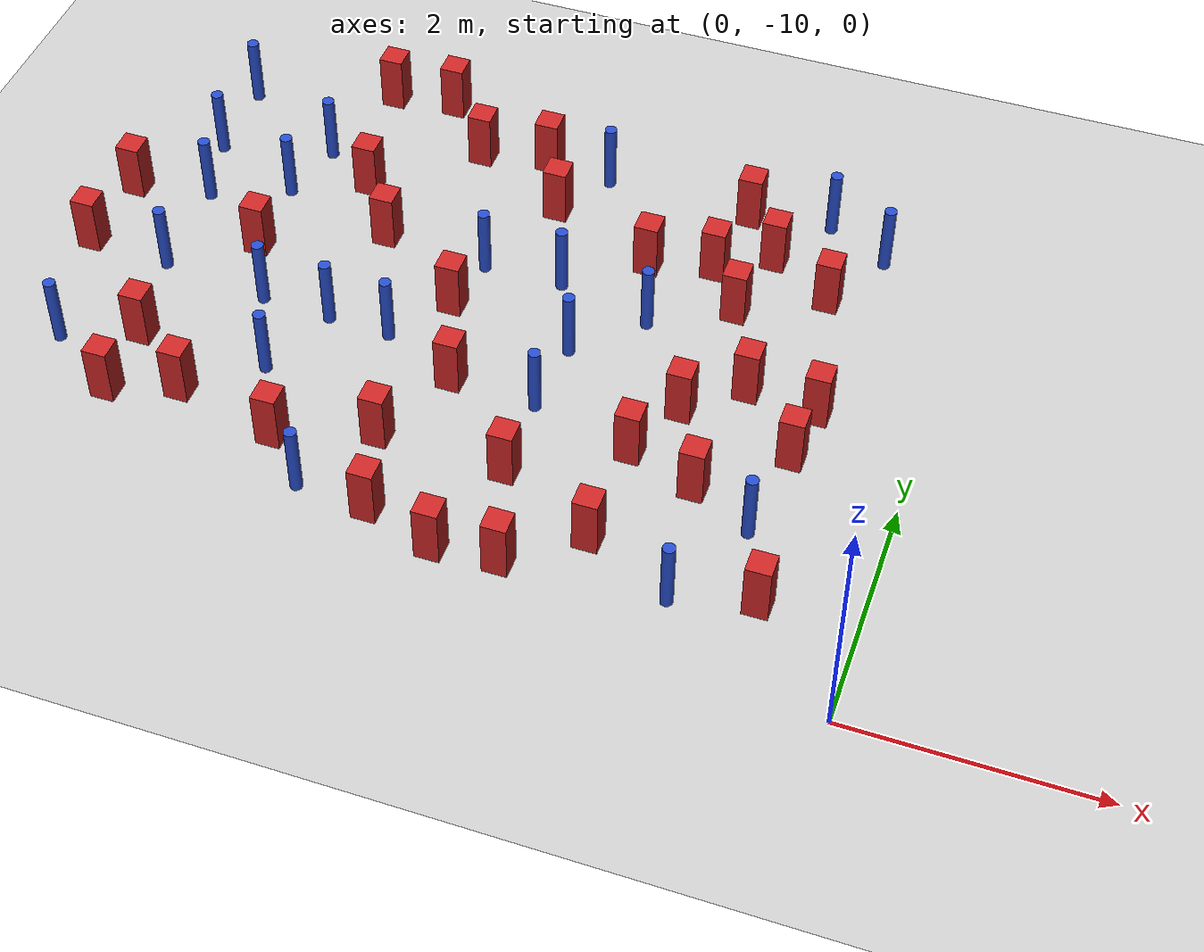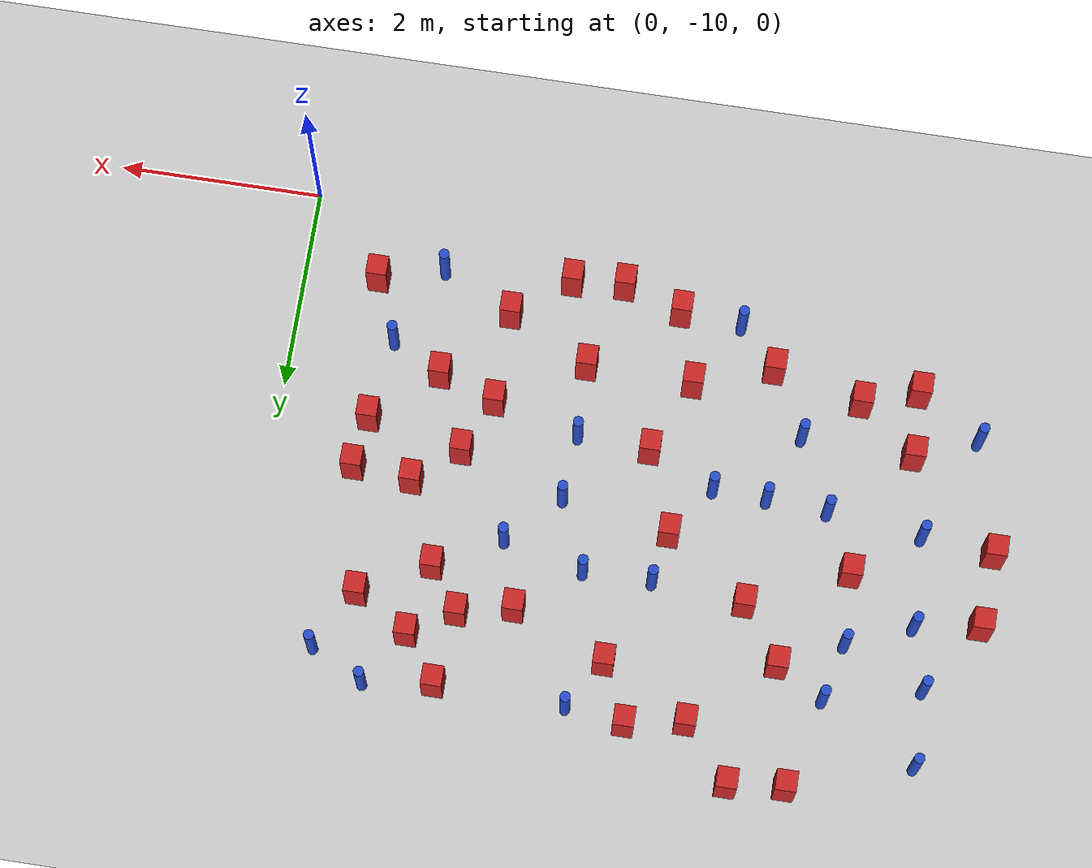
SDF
<sdf version="1.6">
 <world name="default">
  <model name="ground_plane">
   <static>1</static>
   <link name="link">
    <collision name="collision">
     <geometry><plane><normal>0 0 1</normal><size>100 100</size></plane></geometry>
     <surface><friction><ode><mu>100</mu><mu2>50</mu2></ode></friction></surface>
    </collision>
    <visual name="visual">
     <cast_shadows>0</cast_shadows>
     <geometry><plane><normal>0 0 1</normal><size>100 100</size></plane></geometry>
     <material>
      <ambient>1.0 1.0 1.0 1.0</ambient>
      <diffuse>0.8 0.8 0.8 1.0</diffuse>
      <specular>0.01 0.01 0.01 1.000000</specular>
     </material>
    </visual>
   </link>
  </model>
  <model name="pole_obstacle1">
   <static>true</static>
   <pose>-5.5666735039 -5.6523936144 -9.47619616065e-06 5.49618799737e-07 2.36310414037e-07 -1.55090534814e-07</pose>
   <link name="link">
    <pose>0 0 0.3 0 -0 0</pose>
    <inertial>
     <mass>1</mass>
     <inertia><ixx>0.145833</ixx><ixy>0</ixy><ixz>0</ixz><iyy>0.145833</iyy><iyz>0</iyz><izz>0.125</izz></inertia>
    </inertial>
    <collision name="collision">
     <geometry><cylinder><radius>0.05</radius><length>.6</length></cylinder></geometry>
    </collision>
    <visual name="visual">
     <geometry><cylinder><radius>0.05</radius><length>.6</length></cylinder></geometry>
     <material>
      <script><name>Gazebo/Blue</name><uri>file://media/materials/scripts/gazebo.material</uri></script>
     </material>
    </visual>
   </link>
  </model>
  <model name="pole_obstacle10">
   <static>true</static>
   <pose>-3.19090244332 -5.21670269454 -9.4761961606e-06 5.49618799729e-07 2.36310414006e-07 -1.55090534822e-07</pose>
   <link name="link">
    <pose>0 0 0.3 0 -0 0</pose>
    <inertial>
     <mass>1</mass>
     <inertia><ixx>0.145833</ixx><ixy>0</ixy><ixz>0</ixz><iyy>0.145833</iyy><iyz>0</iyz><izz>0.125</izz></inertia>
    </inertial>
    <collision name="collision">
     <geometry><cylinder><radius>0.05</radius><length>.6</length></cylinder></geometry>
    </collision>
    <visual name="visual">
     <geometry><cylinder><radius>0.05</radius><length>.6</length></cylinder></geometry>
     <material>
      <script><name>Gazebo/Blue</name><uri>file://media/materials/scripts/gazebo.material</uri></script>
     </material>
    </visual>
   </link>
  </model>
  <model name="square_post_obstacle8">
   <static>true</static>
   <pose>-1.40005594212 -7.19498384418 -6.11067671241e-07 -5.50515727128e-06 -8.79689657224e-07 2.37013304536e-05</pose>
   <link name="link">
    <pose>0 0 0.25 0 -0 0</pose>
    <inertial>
     <mass>100</mass>
     <inertia>
      <ixx>0.166667</ixx>
      <ixy>0</ixy>
      <ixz>0</ixz>
      <iyy>0.166667</iyy>
      <iyz>0</iyz>
      <izz>0.166667</izz>
     </inertia>
    </inertial>
    <collision name="collision"><geometry><box><size>.2 .2 .5</size></box></geometry></collision>
    <visual name="visual">
     <geometry><box><size>.2 .2 .5</size></box></geometry>
     <material>
      <script><name>Gazebo/Red</name><uri>file://media/materials/scripts/gazebo.material</uri></script>
     </material>
    </visual>
   </link>
  </model>
  <model name="pole_obstacle18">
   <static>true</static>
   <pose>-4.32137698985 -9.2348338794 -9.47619616065e-06 5.49618799737e-07 2.36310414065e-07 -1.55090534796e-07</pose>
   <link name="link">
    <pose>0 0 0.3 0 -0 0</pose>
    <inertial>
     <mass>1</mass>
     <inertia><ixx>0.145833</ixx><ixy>0</ixy><ixz>0</ixz><iyy>0.145833</iyy><iyz>0</iyz><izz>0.125</izz></inertia>
    </inertial>
    <collision name="collision">
     <geometry><cylinder><radius>0.05</radius><length>.6</length></cylinder></geometry>
    </collision>
    <visual name="visual">
     <geometry><cylinder><radius>0.05</radius><length>.6</length></cylinder></geometry>
     <material>
      <script><name>Gazebo/Blue</name><uri>file://media/materials/scripts/gazebo.material</uri></script>
     </material>
    </visual>
   </link>
  </model>
  <model name="pole_obstacle22">
   <static>true</static>
   <pose>-2.90995451725 -7.87920701199 -9.47619616065e-06 5.49618799738e-07 2.3631041406e-07 -1.55090534801e-07</pose>
   <link name="link">
    <pose>0 0 0.3 0 -0 0</pose>
    <inertial>
     <mass>1</mass>
     <inertia><ixx>0.145833</ixx><ixy>0</ixy><ixz>0</ixz><iyy>0.145833</iyy><iyz>0</iyz><izz>0.125</izz></inertia>
    </inertial>
    <collision name="collision">
     <geometry><cylinder><radius>0.05</radius><length>.6</length></cylinder></geometry>
    </collision>
    <visual name="visual">
     <geometry><cylinder><radius>0.05</radius><length>.6</length></cylinder></geometry>
     <material>
      <script><name>Gazebo/Blue</name><uri>file://media/materials/scripts/gazebo.material</uri></script>
     </material>
    </visual>
   </link>
  </model>
  <model name="square_post_obstacle26">
   <static>true</static>
   <pose>-2.8903836845 -8.59846554937 -6.11067671241e-07 -5.50515727128e-06 -8.79689657224e-07 2.37013304536e-05</pose>
   <link name="link">
    <pose>0 0 0.25 0 -0 0</pose>
    <inertial>
     <mass>100</mass>
     <inertia>
      <ixx>0.166667</ixx>
      <ixy>0</ixy>
      <ixz>0</ixz>
      <iyy>0.166667</iyy>
      <iyz>0</iyz>
      <izz>0.166667</izz>
     </inertia>
    </inertial>
    <collision name="collision"><geometry><box><size>.2 .2 .5</size></box></geometry></collision>
    <visual name="visual">
     <geometry><box><size>.2 .2 .5</size></box></geometry>
     <material>
      <script><name>Gazebo/Red</name><uri>file://media/materials/scripts/gazebo.material</uri></script>
     </material>
    </visual>
   </link>
  </model>
  <model name="pole_obstacle37">
   <static>true</static>
   <pose>-6.30495607313 -7.37400436442 -9.47619616065e-06 5.49618799737e-07 2.36310414037e-07 -1.55090534814e-07</pose>
   <link name="link">
    <pose>0 0 0.3 0 -0 0</pose>
    <inertial>
     <mass>1</mass>
     <inertia><ixx>0.145833</ixx><ixy>0</ixy><ixz>0</ixz><iyy>0.145833</iyy><iyz>0</iyz><izz>0.125</izz></inertia>
    </inertial>
    <collision name="collision">
     <geometry><cylinder><radius>0.05</radius><length>.6</length></cylinder></geometry>
    </collision>
    <visual name="visual">
     <geometry><cylinder><radius>0.05</radius><length>.6</length></cylinder></geometry>
     <material>
      <script><name>Gazebo/Blue</name><uri>file://media/materials/scripts/gazebo.material</uri></script>
     </material>
    </visual>
   </link>
  </model>
  <model name="pole_obstacle42">
   <static>true</static>
   <pose>-3.15892760082 -6.54009067874 -9.4761961606e-06 5.49618799729e-07 2.36310414006e-07 -1.55090534822e-07</pose>
   <link name="link">
    <pose>0 0 0.3 0 -0 0</pose>
    <inertial>
     <mass>1</mass>
     <inertia><ixx>0.145833</ixx><ixy>0</ixy><ixz>0</ixz><iyy>0.145833</iyy><iyz>0</iyz><izz>0.125</izz></inertia>
    </inertial>
    <collision name="collision">
     <geometry><cylinder><radius>0.05</radius><length>.6</length></cylinder></geometry>
    </collision>
    <visual name="visual">
     <geometry><cylinder><radius>0.05</radius><length>.6</length></cylinder></geometry>
     <material>
      <script><name>Gazebo/Blue</name><uri>file://media/materials/scripts/gazebo.material</uri></script>
     </material>
    </visual>
   </link>
  </model>
  <model name="square_post_obstacle31">
   <static>true</static>
   <pose>-1.6029362537 -5.70060464757 -6.11067671241e-07 -5.50515727128e-06 -8.79689657224e-07 2.37013304536e-05</pose>
   <link name="link">
    <pose>0 0 0.25 0 -0 0</pose>
    <inertial>
     <mass>100</mass>
     <inertia>
      <ixx>0.166667</ixx>
      <ixy>0</ixy>
      <ixz>0</ixz>
      <iyy>0.166667</iyy>
      <iyz>0</iyz>
      <izz>0.166667</izz>
     </inertia>
    </inertial>
    <collision name="collision"><geometry><box><size>.2 .2 .5</size></box></geometry></collision>
    <visual name="visual">
     <geometry><box><size>.2 .2 .5</size></box></geometry>
     <material>
      <script><name>Gazebo/Red</name><uri>file://media/materials/scripts/gazebo.material</uri></script>
     </material>
    </visual>
   </link>
  </model>
  <model name="square_post_obstacle36">
   <static>true</static>
   <pose>-3.72131818448 -9.28582139799 -6.11067671241e-07 -5.50515727128e-06 -8.79689657224e-07 2.37013304536e-05</pose>
   <link name="link">
    <pose>0 0 0.25 0 -0 0</pose>
    <inertial>
     <mass>100</mass>
     <inertia>
      <ixx>0.166667</ixx>
      <ixy>0</ixy>
      <ixz>0</ixz>
      <iyy>0.166667</iyy>
      <iyz>0</iyz>
      <izz>0.166667</izz>
     </inertia>
    </inertial>
    <collision name="collision"><geometry><box><size>.2 .2 .5</size></box></geometry></collision>
    <visual name="visual">
     <geometry><box><size>.2 .2 .5</size></box></geometry>
     <material>
      <script><name>Gazebo/Red</name><uri>file://media/materials/scripts/gazebo.material</uri></script>
     </material>
    </visual>
   </link>
  </model>
  <model name="pole_obstacle51">
   <static>true</static>
   <pose>-0.995758922429 -8.56179552225 -9.47619616065e-06 5.49618799737e-07 2.36310414038e-07 -1.55090534814e-07</pose>
   <link name="link">
    <pose>0 0 0.3 0 -0 0</pose>
    <inertial>
     <mass>1</mass>
     <inertia><ixx>0.145833</ixx><ixy>0</ixy><ixz>0</ixz><iyy>0.145833</iyy><iyz>0</iyz><izz>0.125</izz></inertia>
    </inertial>
    <collision name="collision">
     <geometry><cylinder><radius>0.05</radius><length>.6</length></cylinder></geometry>
    </collision>
    <visual name="visual">
     <geometry><cylinder><radius>0.05</radius><length>.6</length></cylinder></geometry>
     <material>
      <script><name>Gazebo/Blue</name><uri>file://media/materials/scripts/gazebo.material</uri></script>
     </material>
    </visual>
   </link>
  </model>
  <model name="square_post_obstacle54">
   <static>true</static>
   <pose>-1.06863017638 -6.02365614537 -6.11067671241e-07 -5.50515727128e-06 -8.79689657224e-07 2.37013304536e-05</pose>
   <link name="link">
    <pose>0 0 0.25 0 -0 0</pose>
    <inertial>
     <mass>100</mass>
     <inertia>
      <ixx>0.166667</ixx>
      <ixy>0</ixy>
      <ixz>0</ixz>
      <iyy>0.166667</iyy>
      <iyz>0</iyz>
      <izz>0.166667</izz>
     </inertia>
    </inertial>
    <collision name="collision"><geometry><box><size>.2 .2 .5</size></box></geometry></collision>
    <visual name="visual">
     <geometry><box><size>.2 .2 .5</size></box></geometry>
     <material>
      <script><name>Gazebo/Red</name><uri>file://media/materials/scripts/gazebo.material</uri></script>
     </material>
    </visual>
   </link>
  </model>
  <model name="pole_obstacle69">
   <static>true</static>
   <pose>-5.38596372728 -7.48326434706 -9.47619616065e-06 5.49618799737e-07 2.36310414037e-07 -1.55090534814e-07</pose>
   <link name="link">
    <pose>0 0 0.3 0 -0 0</pose>
    <inertial>
     <mass>1</mass>
     <inertia><ixx>0.145833</ixx><ixy>0</ixy><ixz>0</ixz><iyy>0.145833</iyy><iyz>0</iyz><izz>0.125</izz></inertia>
    </inertial>
    <collision name="collision">
     <geometry><cylinder><radius>0.05</radius><length>.6</length></cylinder></geometry>
    </collision>
    <visual name="visual">
     <geometry><cylinder><radius>0.05</radius><length>.6</length></cylinder></geometry>
     <material>
      <script><name>Gazebo/Blue</name><uri>file://media/materials/scripts/gazebo.material</uri></script>
     </material>
    </visual>
   </link>
  </model>
  <model name="pole_obstacle70">
   <static>true</static>
   <pose>-2.36953930093 -6.73771808582 -9.47619616065e-06 5.49618799738e-07 2.3631041406e-07 -1.55090534801e-07</pose>
   <link name="link">
    <pose>0 0 0.3 0 -0 0</pose>
    <inertial>
     <mass>1</mass>
     <inertia><ixx>0.145833</ixx><ixy>0</ixy><ixz>0</ixz><iyy>0.145833</iyy><iyz>0</iyz><izz>0.125</izz></inertia>
    </inertial>
    <collision name="collision">
     <geometry><cylinder><radius>0.05</radius><length>.6</length></cylinder></geometry>
    </collision>
    <visual name="visual">
     <geometry><cylinder><radius>0.05</radius><length>.6</length></cylinder></geometry>
     <material>
      <script><name>Gazebo/Blue</name><uri>file://media/materials/scripts/gazebo.material</uri></script>
     </material>
    </visual>
   </link>
  </model>
  <model name="square_post_obstacle66">
   <static>true</static>
   <pose>-4.71747509823 -6.47133853467 -6.11067671241e-07 -5.50515727128e-06 -8.79689657224e-07 2.37013304536e-05</pose>
   <link name="link">
    <pose>0 0 0.25 0 -0 0</pose>
    <inertial>
     <mass>100</mass>
     <inertia>
      <ixx>0.166667</ixx>
      <ixy>0</ixy>
      <ixz>0</ixz>
      <iyy>0.166667</iyy>
      <iyz>0</iyz>
      <izz>0.166667</izz>
     </inertia>
    </inertial>
    <collision name="collision"><geometry><box><size>.2 .2 .5</size></box></geometry></collision>
    <visual name="visual">
     <geometry><box><size>.2 .2 .5</size></box></geometry>
     <material>
      <script><name>Gazebo/Red</name><uri>file://media/materials/scripts/gazebo.material</uri></script>
     </material>
    </visual>
   </link>
  </model>
  <model name="square_post_obstacle67">
   <static>true</static>
   <pose>-3.7569472109 -5.14997328504 -6.11067671241e-07 -5.50515727128e-06 -8.79689657224e-07 2.37013304536e-05</pose>
   <link name="link">
    <pose>0 0 0.25 0 -0 0</pose>
    <inertial>
     <mass>100</mass>
     <inertia>
      <ixx>0.166667</ixx>
      <ixy>0</ixy>
      <ixz>0</ixz>
      <iyy>0.166667</iyy>
      <iyz>0</iyz>
      <izz>0.166667</izz>
     </inertia>
    </inertial>
    <collision name="collision"><geometry><box><size>.2 .2 .5</size></box></geometry></collision>
    <visual name="visual">
     <geometry><box><size>.2 .2 .5</size></box></geometry>
     <material>
      <script><name>Gazebo/Red</name><uri>file://media/materials/scripts/gazebo.material</uri></script>
     </material>
    </visual>
   </link>
  </model>
  <model name="pole_obstacle82">
   <static>true</static>
   <pose>-5.04694706806 -8.19081765676 -9.47619616065e-06 5.49618799737e-07 2.36310414065e-07 -1.55090534796e-07</pose>
   <link name="link">
    <pose>0 0 0.3 0 -0 0</pose>
    <inertial>
     <mass>1</mass>
     <inertia><ixx>0.145833</ixx><ixy>0</ixy><ixz>0</ixz><iyy>0.145833</iyy><iyz>0</iyz><izz>0.125</izz></inertia>
    </inertial>
    <collision name="collision">
     <geometry><cylinder><radius>0.05</radius><length>.6</length></cylinder></geometry>
    </collision>
    <visual name="visual">
     <geometry><cylinder><radius>0.05</radius><length>.6</length></cylinder></geometry>
     <material>
      <script><name>Gazebo/Blue</name><uri>file://media/materials/scripts/gazebo.material</uri></script>
     </material>
    </visual>
   </link>
  </model>
  <model name="square_post_obstacle71">
   <static>true</static>
   <pose>-6.9579489745 -6.59122465245 -6.11067671241e-07 -5.50515727128e-06 -8.79689657224e-07 2.37013304536e-05</pose>
   <link name="link">
    <pose>0 0 0.25 0 -0 0</pose>
    <inertial>
     <mass>100</mass>
     <inertia>
      <ixx>0.166667</ixx>
      <ixy>0</ixy>
      <ixz>0</ixz>
      <iyy>0.166667</iyy>
      <iyz>0</iyz>
      <izz>0.166667</izz>
     </inertia>
    </inertial>
    <collision name="collision"><geometry><box><size>.2 .2 .5</size></box></geometry></collision>
    <visual name="visual">
     <geometry><box><size>.2 .2 .5</size></box></geometry>
     <material>
      <script><name>Gazebo/Red</name><uri>file://media/materials/scripts/gazebo.material</uri></script>
     </material>
    </visual>
   </link>
  </model>
  <model name="pole_obstacle88">
   <static>true</static>
   <pose>-6.49029369952 -5.88709925157 -9.47619616065e-06 5.49618799737e-07 2.36310414037e-07 -1.55090534814e-07</pose>
   <link name="link">
    <pose>0 0 0.3 0 -0 0</pose>
    <inertial>
     <mass>1</mass>
     <inertia><ixx>0.145833</ixx><ixy>0</ixy><ixz>0</ixz><iyy>0.145833</iyy><iyz>0</iyz><izz>0.125</izz></inertia>
    </inertial>
    <collision name="collision">
     <geometry><cylinder><radius>0.05</radius><length>.6</length></cylinder></geometry>
    </collision>
    <visual name="visual">
     <geometry><cylinder><radius>0.05</radius><length>.6</length></cylinder></geometry>
     <material>
      <script><name>Gazebo/Blue</name><uri>file://media/materials/scripts/gazebo.material</uri></script>
     </material>
    </visual>
   </link>
  </model>
  <model name="square_post_obstacle86">
   <static>true</static>
   <pose>-0.888967904088 -7.75920780892 -6.11067671241e-07 -5.50515727128e-06 -8.79689657224e-07 2.37013304536e-05</pose>
   <link name="link">
    <pose>0 0 0.25 0 -0 0</pose>
    <inertial>
     <mass>100</mass>
     <inertia>
      <ixx>0.166667</ixx>
      <ixy>0</ixy>
      <ixz>0</ixz>
      <iyy>0.166667</iyy>
      <iyz>0</iyz>
      <izz>0.166667</izz>
     </inertia>
    </inertial>
    <collision name="collision"><geometry><box><size>.2 .2 .5</size></box></geometry></collision>
    <visual name="visual">
     <geometry><box><size>.2 .2 .5</size></box></geometry>
     <material>
      <script><name>Gazebo/Red</name><uri>file://media/materials/scripts/gazebo.material</uri></script>
     </material>
    </visual>
   </link>
  </model>
  <model name="square_post_obstacle87">
   <static>true</static>
   <pose>-1.93460620867 -5.25336640845 -6.11067671241e-07 -5.50515727128e-06 -8.79689657224e-07 2.37013304536e-05</pose>
   <link name="link">
    <pose>0 0 0.25 0 -0 0</pose>
    <inertial>
     <mass>100</mass>
     <inertia>
      <ixx>0.166667</ixx>
      <ixy>0</ixy>
      <ixz>0</ixz>
      <iyy>0.166667</iyy>
      <iyz>0</iyz>
      <izz>0.166667</izz>
     </inertia>
    </inertial>
    <collision name="collision"><geometry><box><size>.2 .2 .5</size></box></geometry></collision>
    <visual name="visual">
     <geometry><box><size>.2 .2 .5</size></box></geometry>
     <material>
      <script><name>Gazebo/Red</name><uri>file://media/materials/scripts/gazebo.material</uri></script>
     </material>
    </visual>
   </link>
  </model>
  <model name="square_post_obstacle97">
   <static>true</static>
   <pose>-2.5681400534 -6.08808087746 -6.11067671241e-07 -5.50515727128e-06 -8.79689657224e-07 2.37013304536e-05</pose>
   <link name="link">
    <pose>0 0 0.25 0 -0 0</pose>
    <inertial>
     <mass>100</mass>
     <inertia>
      <ixx>0.166667</ixx>
      <ixy>0</ixy>
      <ixz>0</ixz>
      <iyy>0.166667</iyy>
      <iyz>0</iyz>
      <izz>0.166667</izz>
     </inertia>
    </inertial>
    <collision name="collision"><geometry><box><size>.2 .2 .5</size></box></geometry></collision>
    <visual name="visual">
     <geometry><box><size>.2 .2 .5</size></box></geometry>
     <material>
      <script><name>Gazebo/Red</name><uri>file://media/materials/scripts/gazebo.material</uri></script>
     </material>
    </visual>
   </link>
  </model>
  <model name="pole_obstacle104">
   <static>true</static>
   <pose>-6.49712494102 -5.14992380395 -9.47619616065e-06 5.49618799737e-07 2.36310414037e-07 -1.55090534814e-07</pose>
   <link name="link">
    <pose>0 0 0.3 0 -0 0</pose>
    <inertial>
     <mass>1</mass>
     <inertia><ixx>0.145833</ixx><ixy>0</ixy><ixz>0</ixz><iyy>0.145833</iyy><iyz>0</iyz><izz>0.125</izz></inertia>
    </inertial>
    <collision name="collision">
     <geometry><cylinder><radius>0.05</radius><length>.6</length></cylinder></geometry>
    </collision>
    <visual name="visual">
     <geometry><cylinder><radius>0.05</radius><length>.6</length></cylinder></geometry>
     <material>
      <script><name>Gazebo/Blue</name><uri>file://media/materials/scripts/gazebo.material</uri></script>
     </material>
    </visual>
   </link>
  </model>
  <model name="square_post_obstacle101">
   <static>true</static>
   <pose>-0.737514001712 -9.1931380845 -6.11067671241e-07 -5.50515727128e-06 -8.79689657224e-07 2.37013304536e-05</pose>
   <link name="link">
    <pose>0 0 0.25 0 -0 0</pose>
    <inertial>
     <mass>100</mass>
     <inertia>
      <ixx>0.166667</ixx>
      <ixy>0</ixy>
      <ixz>0</ixz>
      <iyy>0.166667</iyy>
      <iyz>0</iyz>
      <izz>0.166667</izz>
     </inertia>
    </inertial>
    <collision name="collision"><geometry><box><size>.2 .2 .5</size></box></geometry></collision>
    <visual name="visual">
     <geometry><box><size>.2 .2 .5</size></box></geometry>
     <material>
      <script><name>Gazebo/Red</name><uri>file://media/materials/scripts/gazebo.material</uri></script>
     </material>
    </visual>
   </link>
  </model>
  <model name="square_post_obstacle104">
   <static>true</static>
   <pose>-3.48644381236 -5.70434741623 -6.11067671241e-07 -5.50515727128e-06 -8.79689657224e-07 2.37013304536e-05</pose>
   <link name="link">
    <pose>0 0 0.25 0 -0 0</pose>
    <inertial>
     <mass>100</mass>
     <inertia>
      <ixx>0.166667</ixx>
      <ixy>0</ixy>
      <ixz>0</ixz>
      <iyy>0.166667</iyy>
      <iyz>0</iyz>
      <izz>0.166667</izz>
     </inertia>
    </inertial>
    <collision name="collision"><geometry><box><size>.2 .2 .5</size></box></geometry></collision>
    <visual name="visual">
     <geometry><box><size>.2 .2 .5</size></box></geometry>
     <material>
      <script><name>Gazebo/Red</name><uri>file://media/materials/scripts/gazebo.material</uri></script>
     </material>
    </visual>
   </link>
  </model>
  <model name="square_post_obstacle105">
   <static>true</static>
   <pose>-4.32455526169 -5.25096981968 -6.11067671241e-07 -5.50515727128e-06 -8.79689657224e-07 2.37013304536e-05</pose>
   <link name="link">
    <pose>0 0 0.25 0 -0 0</pose>
    <inertial>
     <mass>100</mass>
     <inertia>
      <ixx>0.166667</ixx>
      <ixy>0</ixy>
      <ixz>0</ixz>
      <iyy>0.166667</iyy>
      <iyz>0</iyz>
      <izz>0.166667</izz>
     </inertia>
    </inertial>
    <collision name="collision"><geometry><box><size>.2 .2 .5</size></box></geometry></collision>
    <visual name="visual">
     <geometry><box><size>.2 .2 .5</size></box></geometry>
     <material>
      <script><name>Gazebo/Red</name><uri>file://media/materials/scripts/gazebo.material</uri></script>
     </material>
    </visual>
   </link>
  </model>
  <model name="square_post_obstacle106">
   <static>true</static>
   <pose>-5.67688063036 -6.92008028134 -6.11067671241e-07 -5.50515727128e-06 -8.79689657224e-07 2.37013304536e-05</pose>
   <link name="link">
    <pose>0 0 0.25 0 -0 0</pose>
    <inertial>
     <mass>100</mass>
     <inertia>
      <ixx>0.166667</ixx>
      <ixy>0</ixy>
      <ixz>0</ixz>
      <iyy>0.166667</iyy>
      <iyz>0</iyz>
      <izz>0.166667</izz>
     </inertia>
    </inertial>
    <collision name="collision"><geometry><box><size>.2 .2 .5</size></box></geometry></collision>
    <visual name="visual">
     <geometry><box><size>.2 .2 .5</size></box></geometry>
     <material>
      <script><name>Gazebo/Red</name><uri>file://media/materials/scripts/gazebo.material</uri></script>
     </material>
    </visual>
   </link>
  </model>
  <model name="square_post_obstacle111">
   <static>true</static>
   <pose>-2.06310555699 -8.10070946847 -6.11067671241e-07 -5.50515727128e-06 -8.79689657224e-07 2.37013304536e-05</pose>
   <link name="link">
    <pose>0 0 0.25 0 -0 0</pose>
    <inertial>
     <mass>100</mass>
     <inertia>
      <ixx>0.166667</ixx>
      <ixy>0</ixy>
      <ixz>0</ixz>
      <iyy>0.166667</iyy>
      <iyz>0</iyz>
      <izz>0.166667</izz>
     </inertia>
    </inertial>
    <collision name="collision"><geometry><box><size>.2 .2 .5</size></box></geometry></collision>
    <visual name="visual">
     <geometry><box><size>.2 .2 .5</size></box></geometry>
     <material>
      <script><name>Gazebo/Red</name><uri>file://media/materials/scripts/gazebo.material</uri></script>
     </material>
    </visual>
   </link>
  </model>
  <model name="square_post_obstacle112">
   <static>true</static>
   <pose>-5.10119640419 -5.92955668075 -6.11067671241e-07 -5.50515727128e-06 -8.79689657224e-07 2.37013304536e-05</pose>
   <link name="link">
    <pose>0 0 0.25 0 -0 0</pose>
    <inertial>
     <mass>100</mass>
     <inertia>
      <ixx>0.166667</ixx>
      <ixy>0</ixy>
      <ixz>0</ixz>
      <iyy>0.166667</iyy>
      <iyz>0</iyz>
      <izz>0.166667</izz>
     </inertia>
    </inertial>
    <collision name="collision"><geometry><box><size>.2 .2 .5</size></box></geometry></collision>
    <visual name="visual">
     <geometry><box><size>.2 .2 .5</size></box></geometry>
     <material>
      <script><name>Gazebo/Red</name><uri>file://media/materials/scripts/gazebo.material</uri></script>
     </material>
    </visual>
   </link>
  </model>
  <model name="square_post_obstacle116">
   <static>true</static>
   <pose>-3.61751567378 -7.84157798384 -6.11067671241e-07 -5.50515727128e-06 -8.79689657224e-07 2.37013304536e-05</pose>
   <link name="link">
    <pose>0 0 0.25 0 -0 0</pose>
    <inertial>
     <mass>100</mass>
     <inertia>
      <ixx>0.166667</ixx>
      <ixy>0</ixy>
      <ixz>0</ixz>
      <iyy>0.166667</iyy>
      <iyz>0</iyz>
      <izz>0.166667</izz>
     </inertia>
    </inertial>
    <collision name="collision"><geometry><box><size>.2 .2 .5</size></box></geometry></collision>
    <visual name="visual">
     <geometry><box><size>.2 .2 .5</size></box></geometry>
     <material>
      <script><name>Gazebo/Red</name><uri>file://media/materials/scripts/gazebo.material</uri></script>
     </material>
    </visual>
   </link>
  </model>
  <model name="pole_obstacle119">
   <static>true</static>
   <pose>-5.70571808592 -6.21399199672 -9.47619616065e-06 5.49618799737e-07 2.36310414037e-07 -1.55090534814e-07</pose>
   <link name="link">
    <pose>0 0 0.3 0 -0 0</pose>
    <inertial>
     <mass>1</mass>
     <inertia><ixx>0.145833</ixx><ixy>0</ixy><ixz>0</ixz><iyy>0.145833</iyy><iyz>0</iyz><izz>0.125</izz></inertia>
    </inertial>
    <collision name="collision">
     <geometry><cylinder><radius>0.05</radius><length>.6</length></cylinder></geometry>
    </collision>
    <visual name="visual">
     <geometry><cylinder><radius>0.05</radius><length>.6</length></cylinder></geometry>
     <material>
      <script><name>Gazebo/Blue</name><uri>file://media/materials/scripts/gazebo.material</uri></script>
     </material>
    </visual>
   </link>
  </model>
  <model name="pole_obstacle136">
   <static>true</static>
   <pose>-4.27039485388 -7.53993531027 -9.47619616065e-06 5.49618799737e-07 2.36310414037e-07 -1.55090534814e-07</pose>
   <link name="link">
    <pose>0 0 0.3 0 -0 0</pose>
    <inertial>
     <mass>1</mass>
     <inertia><ixx>0.145833</ixx><ixy>0</ixy><ixz>0</ixz><iyy>0.145833</iyy><iyz>0</iyz><izz>0.125</izz></inertia>
    </inertial>
    <collision name="collision">
     <geometry><cylinder><radius>0.05</radius><length>.6</length></cylinder></geometry>
    </collision>
    <visual name="visual">
     <geometry><cylinder><radius>0.05</radius><length>.6</length></cylinder></geometry>
     <material>
      <script><name>Gazebo/Blue</name><uri>file://media/materials/scripts/gazebo.material</uri></script>
     </material>
    </visual>
   </link>
  </model>
  <model name="pole_obstacle138">
   <static>true</static>
   <pose>-6.33184496836 -6.48124135569 -9.47619616065e-06 5.49618799737e-07 2.36310414037e-07 -1.55090534814e-07</pose>
   <link name="link">
    <pose>0 0 0.3 0 -0 0</pose>
    <inertial>
     <mass>1</mass>
     <inertia><ixx>0.145833</ixx><ixy>0</ixy><ixz>0</ixz><iyy>0.145833</iyy><iyz>0</iyz><izz>0.125</izz></inertia>
    </inertial>
    <collision name="collision">
     <geometry><cylinder><radius>0.05</radius><length>.6</length></cylinder></geometry>
    </collision>
    <visual name="visual">
     <geometry><cylinder><radius>0.05</radius><length>.6</length></cylinder></geometry>
     <material>
      <script><name>Gazebo/Blue</name><uri>file://media/materials/scripts/gazebo.material</uri></script>
     </material>
    </visual>
   </link>
  </model>
  <model name="square_post_obstacle139">
   <static>true</static>
   <pose>-4.69495940418 -8.83845960556 -6.11067671241e-07 -5.50515727128e-06 -8.79689657224e-07 2.37013304536e-05</pose>
   <link name="link">
    <pose>0 0 0.25 0 -0 0</pose>
    <inertial>
     <mass>100</mass>
     <inertia>
      <ixx>0.166667</ixx>
      <ixy>0</ixy>
      <ixz>0</ixz>
      <iyy>0.166667</iyy>
      <iyz>0</iyz>
      <izz>0.166667</izz>
     </inertia>
    </inertial>
    <collision name="collision"><geometry><box><size>.2 .2 .5</size></box></geometry></collision>
    <visual name="visual">
     <geometry><box><size>.2 .2 .5</size></box></geometry>
     <material>
      <script><name>Gazebo/Red</name><uri>file://media/materials/scripts/gazebo.material</uri></script>
     </material>
    </visual>
   </link>
  </model>
  <model name="square_post_obstacle140">
   <static>true</static>
   <pose>-2.08113385633 -9.01545487873 -6.11067671241e-07 -5.50515727128e-06 -8.79689657224e-07 2.37013304536e-05</pose>
   <link name="link">
    <pose>0 0 0.25 0 -0 0</pose>
    <inertial>
     <mass>100</mass>
     <inertia>
      <ixx>0.166667</ixx>
      <ixy>0</ixy>
      <ixz>0</ixz>
      <iyy>0.166667</iyy>
      <iyz>0</iyz>
      <izz>0.166667</izz>
     </inertia>
    </inertial>
    <collision name="collision"><geometry><box><size>.2 .2 .5</size></box></geometry></collision>
    <visual name="visual">
     <geometry><box><size>.2 .2 .5</size></box></geometry>
     <material>
      <script><name>Gazebo/Red</name><uri>file://media/materials/scripts/gazebo.material</uri></script>
     </material>
    </visual>
   </link>
  </model>
  <model name="square_post_obstacle145">
   <static>true</static>
   <pose>-3.93239193809 -8.57544116854 -6.11067671241e-07 -5.50515727128e-06 -8.79689657224e-07 2.37013304536e-05</pose>
   <link name="link">
    <pose>0 0 0.25 0 -0 0</pose>
    <inertial>
     <mass>100</mass>
     <inertia>
      <ixx>0.166667</ixx>
      <ixy>0</ixy>
      <ixz>0</ixz>
      <iyy>0.166667</iyy>
      <iyz>0</iyz>
      <izz>0.166667</izz>
     </inertia>
    </inertial>
    <collision name="collision"><geometry><box><size>.2 .2 .5</size></box></geometry></collision>
    <visual name="visual">
     <geometry><box><size>.2 .2 .5</size></box></geometry>
     <material>
      <script><name>Gazebo/Red</name><uri>file://media/materials/scripts/gazebo.material</uri></script>
     </material>
    </visual>
   </link>
  </model>
  <model name="square_post_obstacle150">
   <static>true</static>
   <pose>-5.57017856015 -8.63110128724 -6.11067671241e-07 -5.50515727128e-06 -8.79689657224e-07 2.37013304536e-05</pose>
   <link name="link">
    <pose>0 0 0.25 0 -0 0</pose>
    <inertial>
     <mass>100</mass>
     <inertia>
      <ixx>0.166667</ixx>
      <ixy>0</ixy>
      <ixz>0</ixz>
      <iyy>0.166667</iyy>
      <iyz>0</iyz>
      <izz>0.166667</izz>
     </inertia>
    </inertial>
    <collision name="collision"><geometry><box><size>.2 .2 .5</size></box></geometry></collision>
    <visual name="visual">
     <geometry><box><size>.2 .2 .5</size></box></geometry>
     <material>
      <script><name>Gazebo/Red</name><uri>file://media/materials/scripts/gazebo.material</uri></script>
     </material>
    </visual>
   </link>
  </model>
  <model name="pole_obstacle153">
   <static>true</static>
   <pose>-3.82381083088 -6.54568916487 -9.47619616065e-06 5.49618799738e-07 2.3631041406e-07 -1.55090534801e-07</pose>
   <link name="link">
    <pose>0 0 0.3 0 -0 0</pose>
    <inertial>
     <mass>1</mass>
     <inertia><ixx>0.145833</ixx><ixy>0</ixy><ixz>0</ixz><iyy>0.145833</iyy><iyz>0</iyz><izz>0.125</izz></inertia>
    </inertial>
    <collision name="collision">
     <geometry><cylinder><radius>0.05</radius><length>.6</length></cylinder></geometry>
    </collision>
    <visual name="visual">
     <geometry><cylinder><radius>0.05</radius><length>.6</length></cylinder></geometry>
     <material>
      <script><name>Gazebo/Blue</name><uri>file://media/materials/scripts/gazebo.material</uri></script>
     </material>
    </visual>
   </link>
  </model>
  <model name="square_post_obstacle153">
   <static>true</static>
   <pose>-6.99955515022 -7.31700485382 -6.11067671241e-07 -5.50515727128e-06 -8.79689657224e-07 2.37013304536e-05</pose>
   <link name="link">
    <pose>0 0 0.25 0 -0 0</pose>
    <inertial>
     <mass>100</mass>
     <inertia>
      <ixx>0.166667</ixx>
      <ixy>0</ixy>
      <ixz>0</ixz>
      <iyy>0.166667</iyy>
      <iyz>0</iyz>
      <izz>0.166667</izz>
     </inertia>
    </inertial>
    <collision name="collision"><geometry><box><size>.2 .2 .5</size></box></geometry></collision>
    <visual name="visual">
     <geometry><box><size>.2 .2 .5</size></box></geometry>
     <material>
      <script><name>Gazebo/Red</name><uri>file://media/materials/scripts/gazebo.material</uri></script>
     </material>
    </visual>
   </link>
  </model>
  <model name="square_post_obstacle159">
   <static>true</static>
   <pose>-3.91537061545 -7.04601806927 -6.11067671241e-07 -5.50515727128e-06 -8.79689657224e-07 2.37013304536e-05</pose>
   <link name="link">
    <pose>0 0 0.25 0 -0 0</pose>
    <inertial>
     <mass>100</mass>
     <inertia>
      <ixx>0.166667</ixx>
      <ixy>0</ixy>
      <ixz>0</ixz>
      <iyy>0.166667</iyy>
      <iyz>0</iyz>
      <izz>0.166667</izz>
     </inertia>
    </inertial>
    <collision name="collision"><geometry><box><size>.2 .2 .5</size></box></geometry></collision>
    <visual name="visual">
     <geometry><box><size>.2 .2 .5</size></box></geometry>
     <material>
      <script><name>Gazebo/Red</name><uri>file://media/materials/scripts/gazebo.material</uri></script>
     </material>
    </visual>
   </link>
  </model>
  <model name="square_post_obstacle163">
   <static>true</static>
   <pose>-1.82716801152 -7.56226158027 -6.11067671241e-07 -5.50515727128e-06 -8.79689657224e-07 2.37013304536e-05</pose>
   <link name="link">
    <pose>0 0 0.25 0 -0 0</pose>
    <inertial>
     <mass>100</mass>
     <inertia>
      <ixx>0.166667</ixx>
      <ixy>0</ixy>
      <ixz>0</ixz>
      <iyy>0.166667</iyy>
      <iyz>0</iyz>
      <izz>0.166667</izz>
     </inertia>
    </inertial>
    <collision name="collision"><geometry><box><size>.2 .2 .5</size></box></geometry></collision>
    <visual name="visual">
     <geometry><box><size>.2 .2 .5</size></box></geometry>
     <material>
      <script><name>Gazebo/Red</name><uri>file://media/materials/scripts/gazebo.material</uri></script>
     </material>
    </visual>
   </link>
  </model>
  <model name="square_post_obstacle173">
   <static>true</static>
   <pose>-6.12998830542 -8.17152188727 -6.11067671241e-07 -5.50515727128e-06 -8.79689657224e-07 2.37013304536e-05</pose>
   <link name="link">
    <pose>0 0 0.25 0 -0 0</pose>
    <inertial>
     <mass>100</mass>
     <inertia>
      <ixx>0.166667</ixx>
      <ixy>0</ixy>
      <ixz>0</ixz>
      <iyy>0.166667</iyy>
      <iyz>0</iyz>
      <izz>0.166667</izz>
     </inertia>
    </inertial>
    <collision name="collision"><geometry><box><size>.2 .2 .5</size></box></geometry></collision>
    <visual name="visual">
     <geometry><box><size>.2 .2 .5</size></box></geometry>
     <material>
      <script><name>Gazebo/Red</name><uri>file://media/materials/scripts/gazebo.material</uri></script>
     </material>
    </visual>
   </link>
  </model>
  <model name="pole_obstacle190">
   <static>true</static>
   <pose>-2.86085579711 -7.22804940461 -9.47619616065e-06 5.49618799738e-07 2.3631041406e-07 -1.55090534801e-07</pose>
   <link name="link">
    <pose>0 0 0.3 0 -0 0</pose>
    <inertial>
     <mass>1</mass>
     <inertia><ixx>0.145833</ixx><ixy>0</ixy><ixz>0</ixz><iyy>0.145833</iyy><iyz>0</iyz><izz>0.125</izz></inertia>
    </inertial>
    <collision name="collision">
     <geometry><cylinder><radius>0.05</radius><length>.6</length></cylinder></geometry>
    </collision>
    <visual name="visual">
     <geometry><cylinder><radius>0.05</radius><length>.6</length></cylinder></geometry>
     <material>
      <script><name>Gazebo/Blue</name><uri>file://media/materials/scripts/gazebo.material</uri></script>
     </material>
    </visual>
   </link>
  </model>
  <model name="square_post_obstacle200">
   <static>true</static>
   <pose>-1.49939535629 -8.29835698272 -6.11067671241e-07 -5.50515727128e-06 -8.79689657224e-07 2.37013304536e-05</pose>
   <link name="link">
    <pose>0 0 0.25 0 -0 0</pose>
    <inertial>
     <mass>100</mass>
     <inertia>
      <ixx>0.166667</ixx>
      <ixy>0</ixy>
      <ixz>0</ixz>
      <iyy>0.166667</iyy>
      <iyz>0</iyz>
      <izz>0.166667</izz>
     </inertia>
    </inertial>
    <collision name="collision"><geometry><box><size>.2 .2 .5</size></box></geometry></collision>
    <visual name="visual">
     <geometry><box><size>.2 .2 .5</size></box></geometry>
     <material>
      <script><name>Gazebo/Red</name><uri>file://media/materials/scripts/gazebo.material</uri></script>
     </material>
    </visual>
   </link>
  </model>
  <model name="square_post_obstacle202">
   <static>true</static>
   <pose>-6.11281913055 -8.81556841605 -6.11067671241e-07 -5.50515727128e-06 -8.79689657224e-07 2.37013304536e-05</pose>
   <link name="link">
    <pose>0 0 0.25 0 -0 0</pose>
    <inertial>
     <mass>100</mass>
     <inertia>
      <ixx>0.166667</ixx>
      <ixy>0</ixy>
      <ixz>0</ixz>
      <iyy>0.166667</iyy>
      <iyz>0</iyz>
      <izz>0.166667</izz>
     </inertia>
    </inertial>
    <collision name="collision"><geometry><box><size>.2 .2 .5</size></box></geometry></collision>
    <visual name="visual">
     <geometry><box><size>.2 .2 .5</size></box></geometry>
     <material>
      <script><name>Gazebo/Red</name><uri>file://media/materials/scripts/gazebo.material</uri></script>
     </material>
    </visual>
   </link>
  </model>
  <model name="square_post_obstacle204">
   <static>true</static>
   <pose>-2.62523642671 -9.43931226381 -6.11067671241e-07 -5.50515727128e-06 -8.79689657224e-07 2.37013304536e-05</pose>
   <link name="link">
    <pose>0 0 0.25 0 -0 0</pose>
    <inertial>
     <mass>100</mass>
     <inertia>
      <ixx>0.166667</ixx>
      <ixy>0</ixy>
      <ixz>0</ixz>
      <iyy>0.166667</iyy>
      <iyz>0</iyz>
      <izz>0.166667</izz>
     </inertia>
    </inertial>
    <collision name="collision"><geometry><box><size>.2 .2 .5</size></box></geometry></collision>
    <visual name="visual">
     <geometry><box><size>.2 .2 .5</size></box></geometry>
     <material>
      <script><name>Gazebo/Red</name><uri>file://media/materials/scripts/gazebo.material</uri></script>
     </material>
    </visual>
   </link>
  </model>
  <model name="square_post_obstacle210">
   <static>true</static>
   <pose>-2.03572469752 -5.9691270976 -6.11067671241e-07 -5.50515727128e-06 -8.79689657224e-07 2.37013304536e-05</pose>
   <link name="link">
    <pose>0 0 0.25 0 -0 0</pose>
    <inertial>
     <mass>100</mass>
     <inertia>
      <ixx>0.166667</ixx>
      <ixy>0</ixy>
      <ixz>0</ixz>
      <iyy>0.166667</iyy>
      <iyz>0</iyz>
      <izz>0.166667</izz>
     </inertia>
    </inertial>
    <collision name="collision"><geometry><box><size>.2 .2 .5</size></box></geometry></collision>
    <visual name="visual">
     <geometry><box><size>.2 .2 .5</size></box></geometry>
     <material>
      <script><name>Gazebo/Red</name><uri>file://media/materials/scripts/gazebo.material</uri></script>
     </material>
    </visual>
   </link>
  </model>
  <model name="square_post_obstacle213">
   <static>true</static>
   <pose>-0.823857556864 -7.25343715052 -6.11067671241e-07 -5.50515727128e-06 -8.79689657224e-07 2.37013304536e-05</pose>
   <link name="link">
    <pose>0 0 0.25 0 -0 0</pose>
    <inertial>
     <mass>100</mass>
     <inertia>
      <ixx>0.166667</ixx>
      <ixy>0</ixy>
      <ixz>0</ixz>
      <iyy>0.166667</iyy>
      <iyz>0</iyz>
      <izz>0.166667</izz>
     </inertia>
    </inertial>
    <collision name="collision"><geometry><box><size>.2 .2 .5</size></box></geometry></collision>
    <visual name="visual">
     <geometry><box><size>.2 .2 .5</size></box></geometry>
     <material>
      <script><name>Gazebo/Red</name><uri>file://media/materials/scripts/gazebo.material</uri></script>
     </material>
    </visual>
   </link>
  </model>
  <model name="square_post_obstacle214">
   <static>true</static>
   <pose>-5.32351181074 -4.77810814282 -6.11067671241e-07 -5.50515727128e-06 -8.79689657224e-07 2.37013304536e-05</pose>
   <link name="link">
    <pose>0 0 0.25 0 -0 0</pose>
    <inertial>
     <mass>100</mass>
     <inertia>
      <ixx>0.166667</ixx>
      <ixy>0</ixy>
      <ixz>0</ixz>
      <iyy>0.166667</iyy>
      <iyz>0</iyz>
      <izz>0.166667</izz>
     </inertia>
    </inertial>
    <collision name="collision"><geometry><box><size>.2 .2 .5</size></box></geometry></collision>
    <visual name="visual">
     <geometry><box><size>.2 .2 .5</size></box></geometry>
     <material>
      <script><name>Gazebo/Red</name><uri>file://media/materials/scripts/gazebo.material</uri></script>
     </material>
    </visual>
   </link>
  </model>
  <model name="square_post_obstacle224">
   <static>true</static>
   <pose>-4.77995415472 -4.72182258132 -6.11067671241e-07 -5.50515727128e-06 -8.79689657224e-07 2.37013304536e-05</pose>
   <link name="link">
    <pose>0 0 0.25 0 -0 0</pose>
    <inertial>
     <mass>100</mass>
     <inertia>
      <ixx>0.166667</ixx>
      <ixy>0</ixy>
      <ixz>0</ixz>
      <iyy>0.166667</iyy>
      <iyz>0</iyz>
      <izz>0.166667</izz>
     </inertia>
    </inertial>
    <collision name="collision"><geometry><box><size>.2 .2 .5</size></box></geometry></collision>
    <visual name="visual">
     <geometry><box><size>.2 .2 .5</size></box></geometry>
     <material>
      <script><name>Gazebo/Red</name><uri>file://media/materials/scripts/gazebo.material</uri></script>
     </material>
    </visual>
   </link>
  </model>
  <model name="square_post_obstacle227">
   <static>true</static>
   <pose>-1.7360570076 -6.38847644441 -6.11067671241e-07 -5.50515727128e-06 -8.79689657224e-07 2.37013304536e-05</pose>
   <link name="link">
    <pose>0 0 0.25 0 -0 0</pose>
    <inertial>
     <mass>100</mass>
     <inertia>
      <ixx>0.166667</ixx>
      <ixy>0</ixy>
      <ixz>0</ixz>
      <iyy>0.166667</iyy>
      <iyz>0</iyz>
      <izz>0.166667</izz>
     </inertia>
    </inertial>
    <collision name="collision"><geometry><box><size>.2 .2 .5</size></box></geometry></collision>
    <visual name="visual">
     <geometry><box><size>.2 .2 .5</size></box></geometry>
     <material>
      <script><name>Gazebo/Red</name><uri>file://media/materials/scripts/gazebo.material</uri></script>
     </material>
    </visual>
   </link>
  </model>
  <model name="square_post_obstacle229">
   <static>true</static>
   <pose>-3.13909260514 -9.47445346654 -6.11067671241e-07 -5.50515727128e-06 -8.79689657224e-07 2.37013304536e-05</pose>
   <link name="link">
    <pose>0 0 0.25 0 -0 0</pose>
    <inertial>
     <mass>100</mass>
     <inertia>
      <ixx>0.166667</ixx>
      <ixy>0</ixy>
      <ixz>0</ixz>
      <iyy>0.166667</iyy>
      <iyz>0</iyz>
      <izz>0.166667</izz>
     </inertia>
    </inertial>
    <collision name="collision"><geometry><box><size>.2 .2 .5</size></box></geometry></collision>
    <visual name="visual">
     <geometry><box><size>.2 .2 .5</size></box></geometry>
     <material>
      <script><name>Gazebo/Red</name><uri>file://media/materials/scripts/gazebo.material</uri></script>
     </material>
    </visual>
   </link>
  </model>
  <model name="pole_obstacle196">
   <static>true</static>
   <pose>-1.26090999061 -5.15802997922 -9.47619616065e-06 5.49618799737e-07 2.36310414061e-07 -1.550905348e-07</pose>
   <link name="link">
    <pose>0 0 0.3 0 -0 0</pose>
    <inertial>
     <mass>1</mass>
     <inertia><ixx>0.145833</ixx><ixy>0</ixy><ixz>0</ixz><iyy>0.145833</iyy><iyz>0</iyz><izz>0.125</izz></inertia>
    </inertial>
    <collision name="collision">
     <geometry><cylinder><radius>0.05</radius><length>.6</length></cylinder></geometry>
    </collision>
    <visual name="visual">
     <geometry><cylinder><radius>0.05</radius><length>.6</length></cylinder></geometry>
     <material>
      <script><name>Gazebo/Blue</name><uri>file://media/materials/scripts/gazebo.material</uri></script>
     </material>
    </visual>
   </link>
  </model>
  <model name="pole_obstacle206">
   <static>true</static>
   <pose>-0.743562990611 -5.43039997922 -9.47619616065e-06 5.49618799737e-07 2.36310414065e-07 -1.55090534796e-07</pose>
   <link name="link">
    <pose>0 0 0.3 0 -0 0</pose>
    <inertial>
     <mass>1</mass>
     <inertia><ixx>0.145833</ixx><ixy>0</ixy><ixz>0</ixz><iyy>0.145833</iyy><iyz>0</iyz><izz>0.125</izz></inertia>
    </inertial>
    <collision name="collision">
     <geometry><cylinder><radius>0.05</radius><length>.6</length></cylinder></geometry>
    </collision>
    <visual name="visual">
     <geometry><cylinder><radius>0.05</radius><length>.6</length></cylinder></geometry>
     <material>
      <script><name>Gazebo/Blue</name><uri>file://media/materials/scripts/gazebo.material</uri></script>
     </material>
    </visual>
   </link>
  </model>
  <model name="pole_obstacle207">
   <static>true</static>
   <pose>-4.79318999061 -7.51659997922 -9.47619616065e-06 5.49618799737e-07 2.36310414037e-07 -1.55090534814e-07</pose>
   <link name="link">
    <pose>0 0 0.3 0 -0 0</pose>
    <inertial>
     <mass>1</mass>
     <inertia><ixx>0.145833</ixx><ixy>0</ixy><ixz>0</ixz><iyy>0.145833</iyy><iyz>0</iyz><izz>0.125</izz></inertia>
    </inertial>
    <collision name="collision">
     <geometry><cylinder><radius>0.05</radius><length>.6</length></cylinder></geometry>
    </collision>
    <visual name="visual">
     <geometry><cylinder><radius>0.05</radius><length>.6</length></cylinder></geometry>
     <material>
      <script><name>Gazebo/Blue</name><uri>file://media/materials/scripts/gazebo.material</uri></script>
     </material>
    </visual>
   </link>
  </model>
  <model name="pole_obstacle208">
   <static>true</static>
   <pose>-1.36992999061 -9.36239997922 -9.47619616065e-06 5.49618799737e-07 2.36310414046e-07 -1.55090534809e-07</pose>
   <link name="link">
    <pose>0 0 0.3 0 -0 0</pose>
    <inertial>
     <mass>1</mass>
     <inertia><ixx>0.145833</ixx><ixy>0</ixy><ixz>0</ixz><iyy>0.145833</iyy><iyz>0</iyz><izz>0.125</izz></inertia>
    </inertial>
    <collision name="collision">
     <geometry><cylinder><radius>0.05</radius><length>.6</length></cylinder></geometry>
    </collision>
    <visual name="visual">
     <geometry><cylinder><radius>0.05</radius><length>.6</length></cylinder></geometry>
     <material>
      <script><name>Gazebo/Blue</name><uri>file://media/materials/scripts/gazebo.material</uri></script>
     </material>
    </visual>
   </link>
  </model>
  <model name="pole_obstacle215">
   <static>true</static>
   <pose>-6.73728999061 -8.41328997922 -9.47619616065e-06 5.49618799737e-07 2.36310414065e-07 -1.55090534796e-07</pose>
   <link name="link">
    <pose>0 0 0.3 0 -0 0</pose>
    <inertial>
     <mass>1</mass>
     <inertia><ixx>0.145833</ixx><ixy>0</ixy><ixz>0</ixz><iyy>0.145833</iyy><iyz>0</iyz><izz>0.125</izz></inertia>
    </inertial>
    <collision name="collision">
     <geometry><cylinder><radius>0.05</radius><length>.6</length></cylinder></geometry>
    </collision>
    <visual name="visual">
     <geometry><cylinder><radius>0.05</radius><length>.6</length></cylinder></geometry>
     <material>
      <script><name>Gazebo/Blue</name><uri>file://media/materials/scripts/gazebo.material</uri></script>
     </material>
    </visual>
   </link>
  </model>
 </world>
</sdf>
